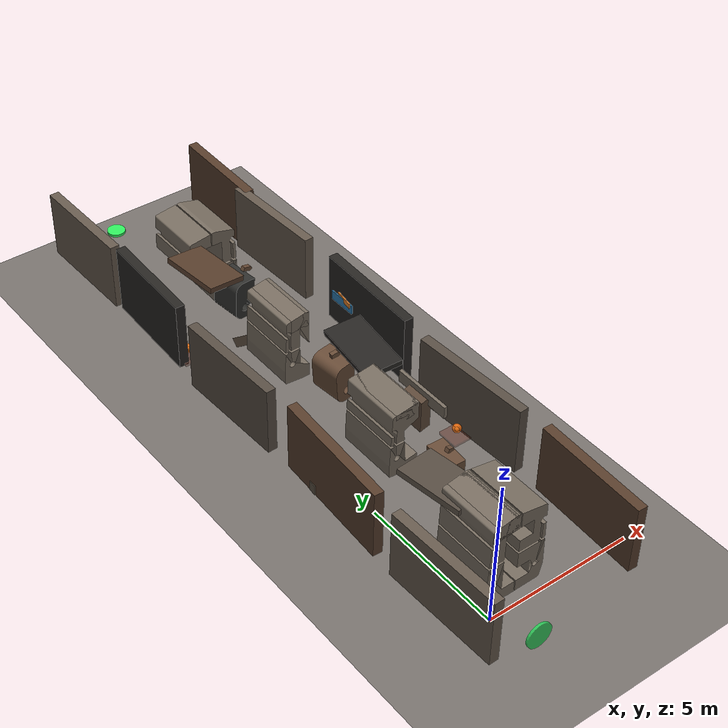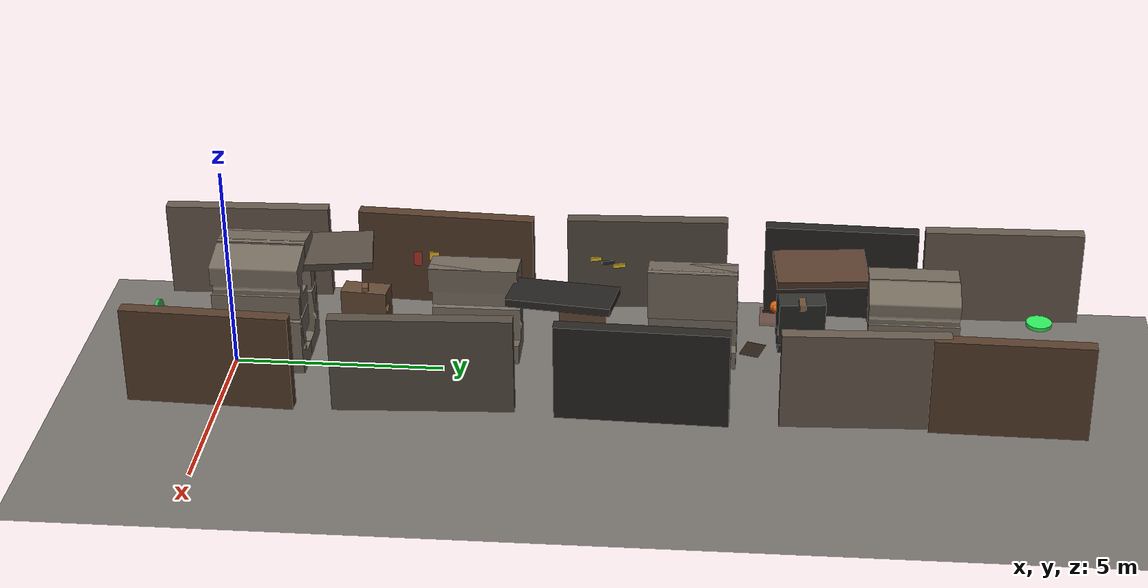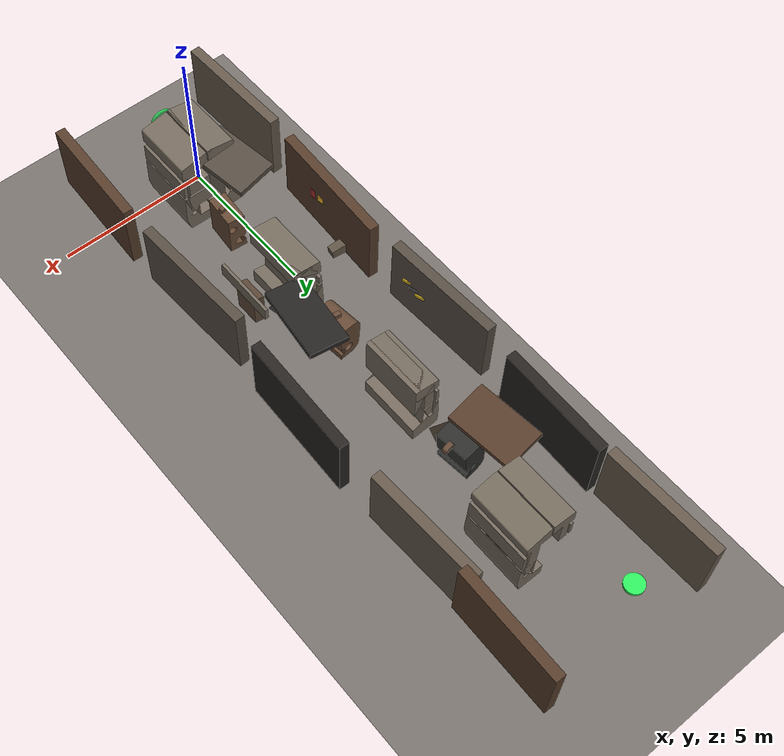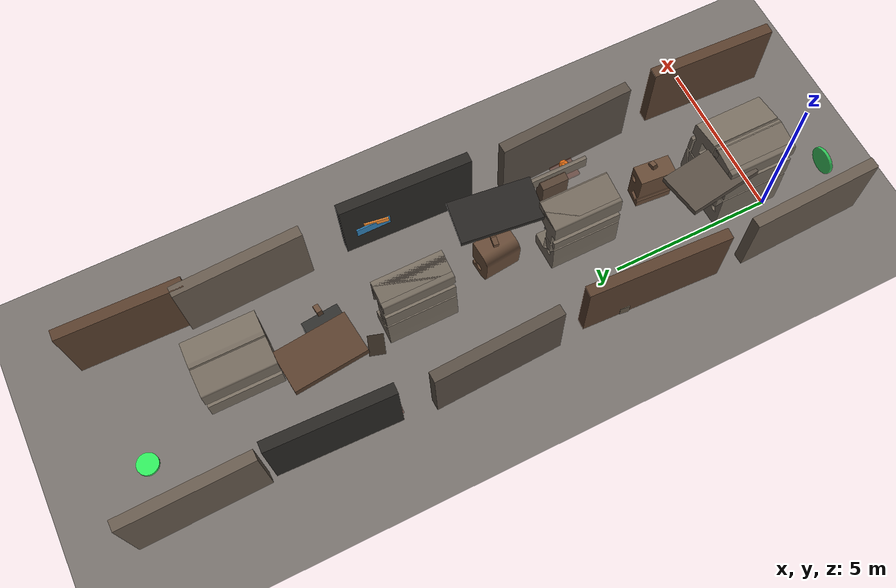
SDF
<sdf version="1.10">
 <world name="rescue_ruins_world">
  <gravity>0 0 -9.8</gravity>
  <physics name="1ms" type="ignored">
   <max_step_size>0.002</max_step_size>
   <real_time_factor>1.0</real_time_factor>
  </physics>
  <plugin filename="gz-sim-physics-system" name="gz::sim::systems::Physics"/>
  <plugin filename="gz-sim-user-commands-system" name="gz::sim::systems::UserCommands"/>
  <plugin filename="gz-sim-scene-broadcaster-system" name="gz::sim::systems::SceneBroadcaster"/>
  <plugin filename="gz-sim-sensors-system" name="gz::sim::systems::Sensors"/>
  <plugin filename="gz-sim-particle-emitter-system" name="gz::sim::systems::ParticleEmitter"/>
  <plugin filename="libsmooth_playback_system.so" name="rl_enhanced_gz_scene::SmoothPlaybackSystem">
   <enabled>false</enabled>
   <csv_path>/tmp/rl_enhanced_playback_samples.csv</csv_path>
   <payload_name>trajectory_payload</payload_name>
   <drone_front_name>world_drone_front</drone_front_name>
   <drone_rear_left_name>world_drone_rear_left</drone_rear_left_name>
   <drone_rear_right_name>world_drone_rear_right</drone_rear_right_name>
   <goal_marker_name>goal_cross_marker</goal_marker_name>
   <goal_marker_x>0.0</goal_marker_x>
   <goal_marker_y>19.0</goal_marker_y>
   <goal_marker_z>2.05</goal_marker_z>
   <goal_marker_yaw_rate>0.30</goal_marker_yaw_rate>
   <speed>1.0</speed>
   <z_offset>1.10</z_offset>
   <drone_z_rel>0.40</drone_z_rel>
   <drone_front_x>0.20</drone_front_x>
   <drone_front_y>0.00</drone_front_y>
   <drone_rear_left_x>-0.17</drone_rear_left_x>
   <drone_rear_left_y>0.13</drone_rear_left_y>
   <drone_rear_right_x>-0.17</drone_rear_right_x>
   <drone_rear_right_y>-0.13</drone_rear_right_y>
  </plugin>
  <scene><ambient>0.38 0.36 0.34 1</ambient><background>0.72 0.71 0.68 1</background></scene>
  <light name="sun" type="directional">
   <pose>0 0 30 0 0 0</pose>
   <diffuse>0.82 0.79 0.74 1</diffuse>
   <specular>0.22 0.22 0.22 1</specular>
   <direction>-0.35 0.18 -0.92</direction>
  </light>
  <model name="ground_plane">
   <static>true</static>
   <link name="ground_link">
    <collision name="collision">
     <geometry><plane><normal>0 0 1</normal><size>120 120</size></plane></geometry>
    </collision>
    <visual name="visual">
     <geometry><plane><normal>0 0 1</normal><size>120 120</size></plane></geometry>
     <material><ambient>0.46 0.44 0.42 1</ambient><diffuse>0.46 0.44 0.42 1</diffuse></material>
    </visual>
   </link>
  </model>
  <model name="left_wall_a">
   <static>true</static>
   <pose>-1.544520 0.200000 2.260000 0.000000 0.000000 0.030000</pose>
   <link name="link">
    <collision name="collision">
     <geometry><box><size>0.320000 3.900000 2.300000</size></box></geometry>
    </collision>
    <visual name="visual">
     <geometry><box><size>0.320000 3.900000 2.300000</size></box></geometry>
     <material>
      <ambient>0.21 0.19 0.16 1</ambient>
      <diffuse>0.40 0.35 0.30 1</diffuse>
      <specular>0.012 0.012 0.012 1</specular>
      <emissive>0 0 0 1</emissive>
     </material>
     <transparency>0.000</transparency>
    </visual>
   </link>
  </model>
  <model name="left_wall_b">
   <static>true</static>
   <pose>-1.454520 5.000000 2.260000 0.000000 0.000000 -0.050000</pose>
   <link name="link">
    <collision name="collision">
     <geometry><box><size>0.320000 4.200000 2.300000</size></box></geometry>
    </collision>
    <visual name="visual">
     <geometry><box><size>0.320000 4.200000 2.300000</size></box></geometry>
     <material>
      <ambient>0.20 0.14 0.10 1</ambient>
      <diffuse>0.34 0.24 0.17 1</diffuse>
      <specular>0.008 0.007 0.006 1</specular>
      <emissive>0 0 0 1</emissive>
     </material>
     <transparency>0.000</transparency>
    </visual>
   </link>
  </model>
  <model name="left_wall_c">
   <static>true</static>
   <pose>-1.564520 9.800000 2.260000 0.000000 0.000000 0.040000</pose>
   <link name="link">
    <collision name="collision">
     <geometry><box><size>0.320000 3.800000 2.300000</size></box></geometry>
    </collision>
    <visual name="visual">
     <geometry><box><size>0.320000 3.800000 2.300000</size></box></geometry>
     <material>
      <ambient>0.18 0.16 0.13 1</ambient>
      <diffuse>0.34 0.30 0.26 1</diffuse>
      <specular>0.010 0.010 0.010 1</specular>
      <emissive>0 0 0 1</emissive>
     </material>
     <transparency>0.000</transparency>
    </visual>
   </link>
  </model>
  <model name="left_wall_d">
   <static>true</static>
   <pose>-1.434520 14.400000 2.260000 0.000000 0.000000 -0.030000</pose>
   <link name="link">
    <collision name="collision">
     <geometry><box><size>0.320000 3.600000 2.300000</size></box></geometry>
    </collision>
    <visual name="visual">
     <geometry><box><size>0.320000 3.600000 2.300000</size></box></geometry>
     <material>
      <ambient>0.09 0.08 0.07 1</ambient>
      <diffuse>0.15 0.14 0.13 1</diffuse>
      <specular>0.004 0.004 0.004 1</specular>
      <emissive>0 0 0 1</emissive>
     </material>
     <transparency>0.000</transparency>
    </visual>
   </link>
  </model>
  <model name="left_wall_e">
   <static>true</static>
   <pose>-1.534520 18.200000 2.260000 0.000000 0.000000 0.020000</pose>
   <link name="link">
    <collision name="collision">
     <geometry><box><size>0.320000 3.700000 2.300000</size></box></geometry>
    </collision>
    <visual name="visual">
     <geometry><box><size>0.320000 3.700000 2.300000</size></box></geometry>
     <material>
      <ambient>0.21 0.19 0.16 1</ambient>
      <diffuse>0.40 0.35 0.30 1</diffuse>
      <specular>0.012 0.012 0.012 1</specular>
      <emissive>0 0 0 1</emissive>
     </material>
     <transparency>0.000</transparency>
    </visual>
   </link>
  </model>
  <model name="right_wall_a">
   <static>true</static>
   <pose>3.635480 0.300000 2.260000 0.000000 0.000000 -0.040000</pose>
   <link name="link">
    <collision name="collision">
     <geometry><box><size>0.320000 3.800000 2.300000</size></box></geometry>
    </collision>
    <visual name="visual">
     <geometry><box><size>0.320000 3.800000 2.300000</size></box></geometry>
     <material>
      <ambient>0.20 0.14 0.10 1</ambient>
      <diffuse>0.34 0.24 0.17 1</diffuse>
      <specular>0.008 0.007 0.006 1</specular>
      <emissive>0 0 0 1</emissive>
     </material>
     <transparency>0.000</transparency>
    </visual>
   </link>
  </model>
  <model name="right_wall_b">
   <static>true</static>
   <pose>3.545480 5.100000 2.260000 0.000000 0.000000 0.050000</pose>
   <link name="link">
    <collision name="collision">
     <geometry><box><size>0.320000 4.100000 2.300000</size></box></geometry>
    </collision>
    <visual name="visual">
     <geometry><box><size>0.320000 4.100000 2.300000</size></box></geometry>
     <material>
      <ambient>0.18 0.16 0.13 1</ambient>
      <diffuse>0.34 0.30 0.26 1</diffuse>
      <specular>0.010 0.010 0.010 1</specular>
      <emissive>0 0 0 1</emissive>
     </material>
     <transparency>0.000</transparency>
    </visual>
   </link>
  </model>
  <model name="right_wall_c">
   <static>true</static>
   <pose>3.655480 10.000000 2.260000 0.000000 0.000000 -0.030000</pose>
   <link name="link">
    <collision name="collision">
     <geometry><box><size>0.320000 3.900000 2.300000</size></box></geometry>
    </collision>
    <visual name="visual">
     <geometry><box><size>0.320000 3.900000 2.300000</size></box></geometry>
     <material>
      <ambient>0.09 0.08 0.07 1</ambient>
      <diffuse>0.15 0.14 0.13 1</diffuse>
      <specular>0.004 0.004 0.004 1</specular>
      <emissive>0 0 0 1</emissive>
     </material>
     <transparency>0.000</transparency>
    </visual>
   </link>
  </model>
  <model name="right_wall_d">
   <static>true</static>
   <pose>3.525480 14.900000 2.260000 0.000000 0.000000 0.040000</pose>
   <link name="link">
    <collision name="collision">
     <geometry><box><size>0.320000 3.700000 2.300000</size></box></geometry>
    </collision>
    <visual name="visual">
     <geometry><box><size>0.320000 3.700000 2.300000</size></box></geometry>
     <material>
      <ambient>0.21 0.19 0.16 1</ambient>
      <diffuse>0.40 0.35 0.30 1</diffuse>
      <specular>0.012 0.012 0.012 1</specular>
      <emissive>0 0 0 1</emissive>
     </material>
     <transparency>0.000</transparency>
    </visual>
   </link>
  </model>
  <model name="right_wall_e">
   <static>true</static>
   <pose>3.635480 18.100000 2.260000 0.000000 0.000000 -0.020000</pose>
   <link name="link">
    <collision name="collision">
     <geometry><box><size>0.320000 3.500000 2.300000</size></box></geometry>
    </collision>
    <visual name="visual">
     <geometry><box><size>0.320000 3.500000 2.300000</size></box></geometry>
     <material>
      <ambient>0.20 0.14 0.10 1</ambient>
      <diffuse>0.34 0.24 0.17 1</diffuse>
      <specular>0.008 0.007 0.006 1</specular>
      <emissive>0 0 0 1</emissive>
     </material>
     <transparency>0.000</transparency>
    </visual>
   </link>
  </model>
  <model name="ceiling_a">
   <static>true</static>
   <pose>0.225480 2.400000 3.200000 0.000000 0.100000 0.140000</pose>
   <link name="link">
    <collision name="collision">
     <geometry><box><size>1.350000 2.200000 0.180000</size></box></geometry>
    </collision>
    <visual name="visual">
     <geometry><box><size>1.350000 2.200000 0.180000</size></box></geometry>
     <material>
      <ambient>0.18 0.16 0.13 1</ambient>
      <diffuse>0.34 0.30 0.26 1</diffuse>
      <specular>0.010 0.010 0.010 1</specular>
      <emissive>0 0 0 1</emissive>
     </material>
     <transparency>0.000</transparency>
    </visual>
   </link>
  </model>
  <model name="ceiling_b">
   <static>true</static>
   <pose>1.905480 8.100000 3.160000 0.000000 -0.080000 -0.120000</pose>
   <link name="link">
    <collision name="collision">
     <geometry><box><size>1.240000 2.400000 0.180000</size></box></geometry>
    </collision>
    <visual name="visual">
     <geometry><box><size>1.240000 2.400000 0.180000</size></box></geometry>
     <material>
      <ambient>0.09 0.08 0.07 1</ambient>
      <diffuse>0.15 0.14 0.13 1</diffuse>
      <specular>0.004 0.004 0.004 1</specular>
      <emissive>0 0 0 1</emissive>
     </material>
     <transparency>0.000</transparency>
    </visual>
   </link>
  </model>
  <model name="ceiling_c">
   <static>true</static>
   <pose>0.265480 13.900000 3.220000 0.000000 0.120000 0.100000</pose>
   <link name="link">
    <collision name="collision">
     <geometry><box><size>1.300000 2.100000 0.180000</size></box></geometry>
    </collision>
    <visual name="visual">
     <geometry><box><size>1.300000 2.100000 0.180000</size></box></geometry>
     <material>
      <ambient>0.20 0.14 0.10 1</ambient>
      <diffuse>0.34 0.24 0.17 1</diffuse>
      <specular>0.008 0.007 0.006 1</specular>
      <emissive>0 0 0 1</emissive>
     </material>
     <transparency>0.000</transparency>
    </visual>
   </link>
  </model>
  <model name="mid_obs_0_core">
   <static>true</static>
   <pose>1.136000 3.500000 2.165000 0.000000 0.000000 0.000000</pose>
   <link name="link">
    <collision name="collision">
     <geometry>
      <mesh><uri>../meshes/mid_obs_0_core.stl</uri><scale>1.000000 1.000000 1.000000</scale></mesh>
     </geometry>
    </collision>
    <visual name="visual">
     <geometry>
      <mesh><uri>../meshes/mid_obs_0_core.stl</uri><scale>1.000000 1.000000 1.000000</scale></mesh>
     </geometry>
     <material>
      <ambient>0.20 0.20 0.19 1</ambient>
      <diffuse>0.20 0.20 0.19 1</diffuse>
      <specular>0.005 0.005 0.005 1</specular>
      <emissive>0 0 0 1</emissive>
     </material>
     <transparency>0.995</transparency>
    </visual>
   </link>
  </model>
  <model name="mid_obs_0_ruin_1">
   <static>true</static>
   <pose>1.136000 3.500000 2.165000 0.000000 -0.050000 -0.080000</pose>
   <link name="link">
    <visual name="visual">
     <geometry>
      <mesh><uri>../meshes/mid_obs_0_ruin_1.stl</uri><scale>1.000000 1.000000 1.000000</scale></mesh>
     </geometry>
     <material>
      <ambient>0.22 0.16 0.11 1</ambient>
      <diffuse>0.40 0.29 0.21 1</diffuse>
      <specular>0.011 0.009 0.007 1</specular>
      <emissive>0 0 0 1</emissive>
     </material>
     <transparency>0.000</transparency>
    </visual>
   </link>
  </model>
  <model name="mid_obs_0_crown_frag">
   <static>true</static>
   <pose>1.356000 3.500000 2.885000 0.000000 0.240000 0.110000</pose>
   <link name="link">
    <visual name="visual">
     <geometry><mesh><uri>../meshes/slab_b.stl</uri><scale>0.240000 0.528000 0.160000</scale></mesh></geometry>
     <material>
      <ambient>0.17 0.13 0.10 1</ambient>
      <diffuse>0.40 0.29 0.21 1</diffuse>
      <specular>0.011 0.009 0.007 1</specular>
      <emissive>0 0 0 1</emissive>
     </material>
     <transparency>0.000</transparency>
    </visual>
   </link>
  </model>
  <model name="mid_obs_1_core">
   <static>true</static>
   <pose>1.431000 8.500000 2.269167 0.000000 0.000000 0.000000</pose>
   <link name="link">
    <collision name="collision">
     <geometry>
      <mesh><uri>../meshes/mid_obs_1_core.stl</uri><scale>1.000000 1.000000 1.000000</scale></mesh>
     </geometry>
    </collision>
    <visual name="visual">
     <geometry>
      <mesh><uri>../meshes/mid_obs_1_core.stl</uri><scale>1.000000 1.000000 1.000000</scale></mesh>
     </geometry>
     <material>
      <ambient>0.20 0.20 0.19 1</ambient>
      <diffuse>0.20 0.20 0.19 1</diffuse>
      <specular>0.005 0.005 0.005 1</specular>
      <emissive>0 0 0 1</emissive>
     </material>
     <transparency>0.995</transparency>
    </visual>
   </link>
  </model>
  <model name="mid_obs_1_ruin_0">
   <static>true</static>
   <pose>1.431000 8.500000 2.269167 0.000000 -0.070000 0.100000</pose>
   <link name="link">
    <visual name="visual">
     <geometry>
      <mesh><uri>../meshes/mid_obs_1_ruin_0.stl</uri><scale>1.000000 1.000000 1.000000</scale></mesh>
     </geometry>
     <material>
      <ambient>0.22 0.16 0.11 1</ambient>
      <diffuse>0.40 0.29 0.21 1</diffuse>
      <specular>0.011 0.009 0.007 1</specular>
      <emissive>0 0 0 1</emissive>
     </material>
     <transparency>0.000</transparency>
    </visual>
   </link>
  </model>
  <model name="mid_obs_1_crown_frag">
   <static>true</static>
   <pose>1.191000 8.500000 2.989167 0.000000 -0.220000 -0.100000</pose>
   <link name="link">
    <visual name="visual">
     <geometry><mesh><uri>../meshes/slab_b.stl</uri><scale>0.290000 0.528000 0.160000</scale></mesh></geometry>
     <material>
      <ambient>0.17 0.13 0.10 1</ambient>
      <diffuse>0.40 0.29 0.21 1</diffuse>
      <specular>0.011 0.009 0.007 1</specular>
      <emissive>0 0 0 1</emissive>
     </material>
     <transparency>0.000</transparency>
    </visual>
   </link>
  </model>
  <model name="mid_obs_2_core">
   <static>true</static>
   <pose>1.285000 13.500000 2.229167 0.000000 0.000000 0.000000</pose>
   <link name="link">
    <collision name="collision">
     <geometry>
      <mesh><uri>../meshes/mid_obs_2_core.stl</uri><scale>1.000000 1.000000 1.000000</scale></mesh>
     </geometry>
    </collision>
    <visual name="visual">
     <geometry>
      <mesh><uri>../meshes/mid_obs_2_core.stl</uri><scale>1.000000 1.000000 1.000000</scale></mesh>
     </geometry>
     <material>
      <ambient>0.20 0.20 0.19 1</ambient>
      <diffuse>0.20 0.20 0.19 1</diffuse>
      <specular>0.005 0.005 0.005 1</specular>
      <emissive>0 0 0 1</emissive>
     </material>
     <transparency>0.995</transparency>
    </visual>
   </link>
  </model>
  <model name="mid_obs_2_ruin_0">
   <static>true</static>
   <pose>1.285000 13.500000 2.229167 0.000000 0.070000 0.100000</pose>
   <link name="link">
    <visual name="visual">
     <geometry>
      <mesh><uri>../meshes/mid_obs_2_ruin_0.stl</uri><scale>1.000000 1.000000 1.000000</scale></mesh>
     </geometry>
     <material>
      <ambient>0.10 0.10 0.10 1</ambient>
      <diffuse>0.18 0.18 0.17 1</diffuse>
      <specular>0.006 0.006 0.006 1</specular>
      <emissive>0 0 0 1</emissive>
     </material>
     <transparency>0.000</transparency>
    </visual>
   </link>
  </model>
  <model name="mid_obs_2_crown_frag">
   <static>true</static>
   <pose>1.505000 13.500000 2.949167 0.000000 0.240000 0.110000</pose>
   <link name="link">
    <visual name="visual">
     <geometry><mesh><uri>../meshes/slab_b.stl</uri><scale>0.340000 0.528000 0.160000</scale></mesh></geometry>
     <material>
      <ambient>0.17 0.13 0.10 1</ambient>
      <diffuse>0.40 0.29 0.21 1</diffuse>
      <specular>0.011 0.009 0.007 1</specular>
      <emissive>0 0 0 1</emissive>
     </material>
     <transparency>0.000</transparency>
    </visual>
   </link>
  </model>
  <model name="rubble_left_0">
   <static>true</static>
   <pose>-1.194520 5.800000 1.290000 0.000000 0.000000 -0.120000</pose>
   <link name="link">
    <visual name="visual">
     <geometry>
      <mesh><uri>../meshes/wall_chunk_a.stl</uri><scale>0.800000 0.620000 0.360000</scale></mesh>
     </geometry>
     <material>
      <ambient>0.20 0.18 0.15 1</ambient>
      <diffuse>0.37 0.33 0.27 1</diffuse>
      <specular>0.010 0.010 0.010 1</specular>
      <emissive>0 0 0 1</emissive>
     </material>
     <transparency>0.000</transparency>
    </visual>
   </link>
  </model>
  <model name="graffiti_l_base">
   <static>true</static>
   <pose>-1.344520 4.800000 2.250000 0.000000 0.000000 0.000000</pose>
   <link name="link">
    <visual name="visual">
     <geometry><box><size>0.040000 1.200000 0.360000</size></box></geometry>
     <material>
      <ambient>0.52 0.12 0.10 1</ambient>
      <diffuse>0.70 0.20 0.16 1</diffuse>
      <specular>0.002 0.002 0.002 1</specular>
      <emissive>0.03 0.01 0.01 1</emissive>
     </material>
     <transparency>0.000</transparency>
    </visual>
   </link>
  </model>
  <model name="graffiti_l_tag">
   <static>true</static>
   <pose>-1.343520 4.980000 2.350000 0.000000 0.000000 0.120000</pose>
   <link name="link">
    <visual name="visual">
     <geometry><box><size>0.040000 0.800000 0.200000</size></box></geometry>
     <material>
      <ambient>0.62 0.44 0.08 1</ambient>
      <diffuse>0.96 0.74 0.16 1</diffuse>
      <specular>0.002 0.002 0.002 1</specular>
      <emissive>0.06 0.04 0.01 1</emissive>
     </material>
     <transparency>0.000</transparency>
    </visual>
   </link>
  </model>
  <model name="graffiti_l_drip">
   <static>true</static>
   <pose>-1.342520 5.170000 2.080000 0.000000 0.000000 -0.100000</pose>
   <link name="link">
    <visual name="visual">
     <geometry><box><size>0.038000 0.300000 0.260000</size></box></geometry>
     <material>
      <ambient>0.08 0.08 0.08 1</ambient>
      <diffuse>0.18 0.18 0.18 1</diffuse>
      <specular>0.001 0.001 0.001 1</specular>
      <emissive>0 0 0 1</emissive>
     </material>
     <transparency>0.020</transparency>
    </visual>
   </link>
  </model>
  <model name="graffiti_r_stencil">
   <static>true</static>
   <pose>3.435480 11.100000 2.200000 0.000000 0.000000 0.000000</pose>
   <link name="link">
    <visual name="visual">
     <geometry><box><size>0.040000 1.000000 0.320000</size></box></geometry>
     <material>
      <ambient>0.10 0.30 0.42 1</ambient>
      <diffuse>0.18 0.50 0.72 1</diffuse>
      <specular>0.002 0.002 0.002 1</specular>
      <emissive>0.01 0.03 0.05 1</emissive>
     </material>
     <transparency>0.000</transparency>
    </visual>
   </link>
  </model>
  <model name="graffiti_r_tag">
   <static>true</static>
   <pose>3.434480 11.000000 2.340000 0.000000 0.000000 -0.150000</pose>
   <link name="link">
    <visual name="visual">
     <geometry><box><size>0.040000 0.700000 0.180000</size></box></geometry>
     <material>
      <ambient>0.58 0.28 0.08 1</ambient>
      <diffuse>0.94 0.54 0.18 1</diffuse>
      <specular>0.002 0.002 0.002 1</specular>
      <emissive>0.05 0.03 0.01 1</emissive>
     </material>
     <transparency>0.000</transparency>
    </visual>
   </link>
  </model>
  <model name="stripe_l_0">
   <static>true</static>
   <pose>-1.343520 8.600000 2.400000 0.000000 0.000000 0.300000</pose>
   <link name="link">
    <visual name="visual">
     <geometry><box><size>0.036000 0.300000 0.090000</size></box></geometry>
     <material>
      <ambient>0.54 0.43 0.08 1</ambient>
      <diffuse>0.94 0.78 0.14 1</diffuse>
      <specular>0.003 0.003 0.003 1</specular>
      <emissive>0 0 0 1</emissive>
     </material>
     <transparency>0.000</transparency>
    </visual>
   </link>
  </model>
  <model name="stripe_l_1">
   <static>true</static>
   <pose>-1.343520 8.870000 2.320000 0.000000 0.000000 0.300000</pose>
   <link name="link">
    <visual name="visual">
     <geometry><box><size>0.036000 0.300000 0.090000</size></box></geometry>
     <material>
      <ambient>0.07 0.07 0.07 1</ambient>
      <diffuse>0.16 0.16 0.16 1</diffuse>
      <specular>0.002 0.002 0.002 1</specular>
      <emissive>0 0 0 1</emissive>
     </material>
     <transparency>0.000</transparency>
    </visual>
   </link>
  </model>
  <model name="stripe_l_2">
   <static>true</static>
   <pose>-1.343520 9.140000 2.240000 0.000000 0.000000 0.300000</pose>
   <link name="link">
    <visual name="visual">
     <geometry><box><size>0.036000 0.300000 0.090000</size></box></geometry>
     <material>
      <ambient>0.54 0.43 0.08 1</ambient>
      <diffuse>0.94 0.78 0.14 1</diffuse>
      <specular>0.003 0.003 0.003 1</specular>
      <emissive>0 0 0 1</emissive>
     </material>
     <transparency>0.000</transparency>
    </visual>
   </link>
  </model>
  <model name="stain_floor_0">
   <static>true</static>
   <pose>1.385480 6.300000 1.195000 0.000000 0.000000 0.220000</pose>
   <link name="link">
    <visual name="visual">
     <geometry><box><size>0.740000 0.520000 0.010000</size></box></geometry>
     <material>
      <ambient>0.04 0.04 0.04 1</ambient>
      <diffuse>0.11 0.11 0.11 1</diffuse>
      <specular>0.001 0.001 0.001 1</specular>
      <emissive>0 0 0 1</emissive>
     </material>
     <transparency>0.150</transparency>
    </visual>
   </link>
  </model>
  <model name="stain_floor_1">
   <static>true</static>
   <pose>0.585480 12.400000 1.195000 0.000000 0.000000 -0.300000</pose>
   <link name="link">
    <visual name="visual">
     <geometry><box><size>0.600000 0.460000 0.010000</size></box></geometry>
     <material>
      <ambient>0.05 0.04 0.02 1</ambient>
      <diffuse>0.14 0.10 0.06 1</diffuse>
      <specular>0.001 0.001 0.001 1</specular>
      <emissive>0 0 0 1</emissive>
     </material>
     <transparency>0.200</transparency>
    </visual>
   </link>
  </model>
  <model name="fire_hazard_1">
   <static>true</static>
   <pose>3.165480 5.200000 1.140000 0.000000 0.000000 0.000000</pose>
   <link name="link">
    <collision name="collision">
     <geometry><box><size>0.720000 0.720000 0.080000</size></box></geometry>
    </collision>
    <visual name="visual">
     <geometry><box><size>0.720000 0.720000 0.080000</size></box></geometry>
     <material>
      <ambient>0.35 0.08 0.02 0.35</ambient>
      <diffuse>0.35 0.08 0.02 0.35</diffuse>
      <specular>0.08 0.08 0.08 1</specular>
      <emissive>0 0 0 1</emissive>
     </material>
     <transparency>0.000</transparency>
    </visual>
    <particle_emitter name="flame" type="ellipsoid">
     <pose>0 0 0.190000 0 0 0</pose>
     <emitting>true</emitting>
     <size>0.180000 0.180000 0.050000</size>
     <particle_size>0.110000 0.110000 0.110000</particle_size>
     <lifetime>1.200000</lifetime>
     <rate>120.000000</rate>
     <min_velocity>0.220000</min_velocity>
     <max_velocity>0.950000</max_velocity>
     <scale_rate>0.520000</scale_rate>
     <color_start>1.0 0.88 0.30 0.98</color_start>
     <color_end>1.0 0.22 0.04 0.70</color_end>
    </particle_emitter>
    <particle_emitter name="smoke" type="ellipsoid">
     <pose>0 0 0.330000 0 0 0</pose>
     <emitting>true</emitting>
     <size>0.070000 0.070000 0.030000</size>
     <particle_size>0.045000 0.045000 0.045000</particle_size>
     <lifetime>0.900000</lifetime>
     <rate>0.200000</rate>
     <min_velocity>0.050000</min_velocity>
     <max_velocity>0.140000</max_velocity>
     <scale_rate>0.040000</scale_rate>
     <color_start>0.20 0.20 0.20 0.06</color_start>
     <color_end>0.08 0.08 0.08 0.0</color_end>
    </particle_emitter>
    <visual name="flame_core_inner">
     <pose>0 0 0.220000 0 0 0</pose>
     <geometry><sphere><radius>0.070000</radius></sphere></geometry>
     <material>
      <ambient>1.0 0.68 0.18 1.0</ambient>
      <diffuse>1.0 0.68 0.18 1.0</diffuse>
      <emissive>1.0 0.68 0.18 1.0</emissive>
     </material>
     <transparency>0.05</transparency>
    </visual>
    <visual name="flame_core_glow">
     <pose>0 0 0.260000 0 0 0</pose>
     <geometry><sphere><radius>0.140000</radius></sphere></geometry>
     <material>
      <ambient>1.0 0.48 0.10 0.95</ambient>
      <diffuse>1.0 0.48 0.10 0.95</diffuse>
      <emissive>1.0 0.48 0.10 0.95</emissive>
     </material>
     <transparency>0.12</transparency>
    </visual>
   </link>
  </model>
  <model name="fire_hazard_2">
   <static>true</static>
   <pose>-1.094520 12.900000 1.140000 0.000000 0.000000 0.000000</pose>
   <link name="link">
    <collision name="collision">
     <geometry><box><size>0.760000 0.760000 0.080000</size></box></geometry>
    </collision>
    <visual name="visual">
     <geometry><box><size>0.760000 0.760000 0.080000</size></box></geometry>
     <material>
      <ambient>0.35 0.08 0.02 0.35</ambient>
      <diffuse>0.35 0.08 0.02 0.35</diffuse>
      <specular>0.08 0.08 0.08 1</specular>
      <emissive>0 0 0 1</emissive>
     </material>
     <transparency>0.000</transparency>
    </visual>
    <particle_emitter name="flame" type="ellipsoid">
     <pose>0 0 0.200000 0 0 0</pose>
     <emitting>true</emitting>
     <size>0.190000 0.190000 0.050000</size>
     <particle_size>0.115000 0.115000 0.115000</particle_size>
     <lifetime>1.250000</lifetime>
     <rate>128.000000</rate>
     <min_velocity>0.220000</min_velocity>
     <max_velocity>1.000000</max_velocity>
     <scale_rate>0.540000</scale_rate>
     <color_start>1.0 0.88 0.30 0.98</color_start>
     <color_end>1.0 0.22 0.04 0.70</color_end>
    </particle_emitter>
    <particle_emitter name="smoke" type="ellipsoid">
     <pose>0 0 0.350000 0 0 0</pose>
     <emitting>true</emitting>
     <size>0.075000 0.075000 0.030000</size>
     <particle_size>0.048000 0.048000 0.048000</particle_size>
     <lifetime>0.950000</lifetime>
     <rate>0.200000</rate>
     <min_velocity>0.050000</min_velocity>
     <max_velocity>0.150000</max_velocity>
     <scale_rate>0.040000</scale_rate>
     <color_start>0.20 0.20 0.20 0.06</color_start>
     <color_end>0.08 0.08 0.08 0.0</color_end>
    </particle_emitter>
    <visual name="flame_core_inner">
     <pose>0 0 0.230000 0 0 0</pose>
     <geometry><sphere><radius>0.075000</radius></sphere></geometry>
     <material>
      <ambient>1.0 0.68 0.18 1.0</ambient>
      <diffuse>1.0 0.68 0.18 1.0</diffuse>
      <emissive>1.0 0.68 0.18 1.0</emissive>
     </material>
     <transparency>0.05</transparency>
    </visual>
    <visual name="flame_core_glow">
     <pose>0 0 0.270000 0 0 0</pose>
     <geometry><sphere><radius>0.145000</radius></sphere></geometry>
     <material>
      <ambient>1.0 0.48 0.10 0.95</ambient>
      <diffuse>1.0 0.48 0.10 0.95</diffuse>
      <emissive>1.0 0.48 0.10 0.95</emissive>
     </material>
     <transparency>0.12</transparency>
    </visual>
   </link>
  </model>
  <model name="door1_core_left_0">
   <static>true</static>
   <pose>0.780000 1.000000 2.100000 0.000000 0.000000 0.000000</pose>
   <link name="link">
    <collision name="collision">
     <geometry>
      <mesh><uri>../meshes/door1_core_left_0.stl</uri><scale>1.000000 1.000000 1.000000</scale></mesh>
     </geometry>
    </collision>
    <visual name="visual">
     <geometry>
      <mesh><uri>../meshes/door1_core_left_0.stl</uri><scale>1.000000 1.000000 1.000000</scale></mesh>
     </geometry>
     <material>
      <ambient>0.24 0.22 0.20 1</ambient>
      <diffuse>0.46 0.42 0.37 1</diffuse>
      <specular>0.012 0.012 0.012 1</specular>
      <emissive>0 0 0 1</emissive>
     </material>
     <transparency>0.000</transparency>
    </visual>
   </link>
  </model>
  <model name="door1_core_left_1">
   <static>true</static>
   <pose>0.780000 1.000000 2.100000 0.000000 0.000000 0.000000</pose>
   <link name="link">
    <collision name="collision">
     <geometry>
      <mesh><uri>../meshes/door1_core_left_1.stl</uri><scale>1.000000 1.000000 1.000000</scale></mesh>
     </geometry>
    </collision>
    <visual name="visual">
     <geometry>
      <mesh><uri>../meshes/door1_core_left_1.stl</uri><scale>1.000000 1.000000 1.000000</scale></mesh>
     </geometry>
     <material>
      <ambient>0.24 0.22 0.20 1</ambient>
      <diffuse>0.46 0.42 0.37 1</diffuse>
      <specular>0.012 0.012 0.012 1</specular>
      <emissive>0 0 0 1</emissive>
     </material>
     <transparency>0.000</transparency>
    </visual>
   </link>
  </model>
  <model name="door1_core_left_2">
   <static>true</static>
   <pose>0.780000 1.000000 2.100000 0.000000 0.000000 0.000000</pose>
   <link name="link">
    <collision name="collision">
     <geometry>
      <mesh><uri>../meshes/door1_core_left_2.stl</uri><scale>1.000000 1.000000 1.000000</scale></mesh>
     </geometry>
    </collision>
    <visual name="visual">
     <geometry>
      <mesh><uri>../meshes/door1_core_left_2.stl</uri><scale>1.000000 1.000000 1.000000</scale></mesh>
     </geometry>
     <material>
      <ambient>0.24 0.22 0.20 1</ambient>
      <diffuse>0.46 0.42 0.37 1</diffuse>
      <specular>0.012 0.012 0.012 1</specular>
      <emissive>0 0 0 1</emissive>
     </material>
     <transparency>0.000</transparency>
    </visual>
   </link>
  </model>
  <model name="door1_core_right_0">
   <static>true</static>
   <pose>0.780000 1.000000 2.100000 0.000000 0.000000 0.000000</pose>
   <link name="link">
    <collision name="collision">
     <geometry>
      <mesh><uri>../meshes/door1_core_right_0.stl</uri><scale>1.000000 1.000000 1.000000</scale></mesh>
     </geometry>
    </collision>
    <visual name="visual">
     <geometry>
      <mesh><uri>../meshes/door1_core_right_0.stl</uri><scale>1.000000 1.000000 1.000000</scale></mesh>
     </geometry>
     <material>
      <ambient>0.24 0.22 0.20 1</ambient>
      <diffuse>0.46 0.42 0.37 1</diffuse>
      <specular>0.012 0.012 0.012 1</specular>
      <emissive>0 0 0 1</emissive>
     </material>
     <transparency>0.000</transparency>
    </visual>
   </link>
  </model>
  <model name="door1_core_right_1">
   <static>true</static>
   <pose>0.780000 1.000000 2.100000 0.000000 0.000000 0.000000</pose>
   <link name="link">
    <collision name="collision">
     <geometry>
      <mesh><uri>../meshes/door1_core_right_1.stl</uri><scale>1.000000 1.000000 1.000000</scale></mesh>
     </geometry>
    </collision>
    <visual name="visual">
     <geometry>
      <mesh><uri>../meshes/door1_core_right_1.stl</uri><scale>1.000000 1.000000 1.000000</scale></mesh>
     </geometry>
     <material>
      <ambient>0.24 0.22 0.20 1</ambient>
      <diffuse>0.46 0.42 0.37 1</diffuse>
      <specular>0.012 0.012 0.012 1</specular>
      <emissive>0 0 0 1</emissive>
     </material>
     <transparency>0.000</transparency>
    </visual>
   </link>
  </model>
  <model name="door1_core_right_2">
   <static>true</static>
   <pose>0.780000 1.000000 2.100000 0.000000 0.000000 0.000000</pose>
   <link name="link">
    <collision name="collision">
     <geometry>
      <mesh><uri>../meshes/door1_core_right_2.stl</uri><scale>1.000000 1.000000 1.000000</scale></mesh>
     </geometry>
    </collision>
    <visual name="visual">
     <geometry>
      <mesh><uri>../meshes/door1_core_right_2.stl</uri><scale>1.000000 1.000000 1.000000</scale></mesh>
     </geometry>
     <material>
      <ambient>0.24 0.22 0.20 1</ambient>
      <diffuse>0.46 0.42 0.37 1</diffuse>
      <specular>0.012 0.012 0.012 1</specular>
      <emissive>0 0 0 1</emissive>
     </material>
     <transparency>0.000</transparency>
    </visual>
   </link>
  </model>
  <model name="door1_core_top_0">
   <static>true</static>
   <pose>0.780000 1.000000 2.100000 0.000000 0.000000 0.000000</pose>
   <link name="link">
    <collision name="collision">
     <geometry>
      <mesh><uri>../meshes/door1_core_top_0.stl</uri><scale>1.000000 1.000000 1.000000</scale></mesh>
     </geometry>
    </collision>
    <visual name="visual">
     <geometry>
      <mesh><uri>../meshes/door1_core_top_0.stl</uri><scale>1.000000 1.000000 1.000000</scale></mesh>
     </geometry>
     <material>
      <ambient>0.24 0.22 0.20 1</ambient>
      <diffuse>0.46 0.42 0.37 1</diffuse>
      <specular>0.012 0.012 0.012 1</specular>
      <emissive>0 0 0 1</emissive>
     </material>
     <transparency>0.000</transparency>
    </visual>
   </link>
  </model>
  <model name="door1_broken_top">
   <static>true</static>
   <pose>0.480000 0.880000 3.320000 0.000000 0.000000 0.180000</pose>
   <link name="link">
    <visual name="visual">
     <geometry><mesh><uri>../meshes/slab_b.stl</uri><scale>0.400000 1.264800 0.220000</scale></mesh></geometry>
     <material>
      <ambient>0.14 0.14 0.13 1</ambient>
      <diffuse>0.28 0.27 0.25 1</diffuse>
      <specular>0.008 0.008 0.008 1</specular>
      <emissive>0 0 0 1</emissive>
     </material>
     <transparency>0.000</transparency>
    </visual>
   </link>
  </model>
  <model name="door2_core_left_0">
   <static>true</static>
   <pose>1.492000 6.000000 2.230000 0.000000 0.000000 0.000000</pose>
   <link name="link">
    <collision name="collision">
     <geometry>
      <mesh><uri>../meshes/door2_core_left_0.stl</uri><scale>1.000000 1.000000 1.000000</scale></mesh>
     </geometry>
    </collision>
    <visual name="visual">
     <geometry>
      <mesh><uri>../meshes/door2_core_left_0.stl</uri><scale>1.000000 1.000000 1.000000</scale></mesh>
     </geometry>
     <material>
      <ambient>0.24 0.22 0.20 1</ambient>
      <diffuse>0.46 0.42 0.37 1</diffuse>
      <specular>0.012 0.012 0.012 1</specular>
      <emissive>0 0 0 1</emissive>
     </material>
     <transparency>0.000</transparency>
    </visual>
   </link>
  </model>
  <model name="door2_core_left_1">
   <static>true</static>
   <pose>1.492000 6.000000 2.230000 0.000000 0.000000 0.000000</pose>
   <link name="link">
    <collision name="collision">
     <geometry>
      <mesh><uri>../meshes/door2_core_left_1.stl</uri><scale>1.000000 1.000000 1.000000</scale></mesh>
     </geometry>
    </collision>
    <visual name="visual">
     <geometry>
      <mesh><uri>../meshes/door2_core_left_1.stl</uri><scale>1.000000 1.000000 1.000000</scale></mesh>
     </geometry>
     <material>
      <ambient>0.24 0.22 0.20 1</ambient>
      <diffuse>0.46 0.42 0.37 1</diffuse>
      <specular>0.012 0.012 0.012 1</specular>
      <emissive>0 0 0 1</emissive>
     </material>
     <transparency>0.000</transparency>
    </visual>
   </link>
  </model>
  <model name="door2_core_left_2">
   <static>true</static>
   <pose>1.492000 6.000000 2.230000 0.000000 0.000000 0.000000</pose>
   <link name="link">
    <collision name="collision">
     <geometry>
      <mesh><uri>../meshes/door2_core_left_2.stl</uri><scale>1.000000 1.000000 1.000000</scale></mesh>
     </geometry>
    </collision>
    <visual name="visual">
     <geometry>
      <mesh><uri>../meshes/door2_core_left_2.stl</uri><scale>1.000000 1.000000 1.000000</scale></mesh>
     </geometry>
     <material>
      <ambient>0.24 0.22 0.20 1</ambient>
      <diffuse>0.46 0.42 0.37 1</diffuse>
      <specular>0.012 0.012 0.012 1</specular>
      <emissive>0 0 0 1</emissive>
     </material>
     <transparency>0.000</transparency>
    </visual>
   </link>
  </model>
  <model name="door2_core_right_1">
   <static>true</static>
   <pose>1.492000 6.000000 2.230000 0.000000 0.000000 0.000000</pose>
   <link name="link">
    <collision name="collision">
     <geometry>
      <mesh><uri>../meshes/door2_core_right_1.stl</uri><scale>1.000000 1.000000 1.000000</scale></mesh>
     </geometry>
    </collision>
    <visual name="visual">
     <geometry>
      <mesh><uri>../meshes/door2_core_right_1.stl</uri><scale>1.000000 1.000000 1.000000</scale></mesh>
     </geometry>
     <material>
      <ambient>0.24 0.22 0.20 1</ambient>
      <diffuse>0.46 0.42 0.37 1</diffuse>
      <specular>0.012 0.012 0.012 1</specular>
      <emissive>0 0 0 1</emissive>
     </material>
     <transparency>0.000</transparency>
    </visual>
   </link>
  </model>
  <model name="door2_core_top_0">
   <static>true</static>
   <pose>1.492000 6.000000 2.230000 0.000000 0.000000 0.000000</pose>
   <link name="link">
    <collision name="collision">
     <geometry>
      <mesh><uri>../meshes/door2_core_top_0.stl</uri><scale>1.000000 1.000000 1.000000</scale></mesh>
     </geometry>
    </collision>
    <visual name="visual">
     <geometry>
      <mesh><uri>../meshes/door2_core_top_0.stl</uri><scale>1.000000 1.000000 1.000000</scale></mesh>
     </geometry>
     <material>
      <ambient>0.24 0.22 0.20 1</ambient>
      <diffuse>0.46 0.42 0.37 1</diffuse>
      <specular>0.012 0.012 0.012 1</specular>
      <emissive>0 0 0 1</emissive>
     </material>
     <transparency>0.000</transparency>
    </visual>
   </link>
  </model>
  <model name="door2_broken_side">
   <static>true</static>
   <pose>2.352000 6.080000 2.004400 0.000000 0.000000 0.000000</pose>
   <link name="link">
    <visual name="visual">
     <geometry>
      <mesh><uri>../meshes/wall_chunk_a.stl</uri><scale>0.360000 1.734000 1.140000</scale></mesh>
     </geometry>
     <material>
      <ambient>0.20 0.16 0.12 1</ambient>
      <diffuse>0.36 0.28 0.22 1</diffuse>
      <specular>0.010 0.008 0.006 1</specular>
      <emissive>0 0 0 1</emissive>
     </material>
     <transparency>0.000</transparency>
    </visual>
   </link>
  </model>
  <model name="door3_core_left_0">
   <static>true</static>
   <pose>1.370000 11.000000 2.308333 0.000000 0.000000 0.000000</pose>
   <link name="link">
    <collision name="collision">
     <geometry>
      <mesh><uri>../meshes/door3_core_left_0.stl</uri><scale>1.000000 1.000000 1.000000</scale></mesh>
     </geometry>
    </collision>
    <visual name="visual">
     <geometry>
      <mesh><uri>../meshes/door3_core_left_0.stl</uri><scale>1.000000 1.000000 1.000000</scale></mesh>
     </geometry>
     <material>
      <ambient>0.24 0.22 0.20 1</ambient>
      <diffuse>0.46 0.42 0.37 1</diffuse>
      <specular>0.012 0.012 0.012 1</specular>
      <emissive>0 0 0 1</emissive>
     </material>
     <transparency>0.000</transparency>
    </visual>
   </link>
  </model>
  <model name="door3_core_left_1">
   <static>true</static>
   <pose>1.370000 11.000000 2.308333 0.000000 0.000000 0.000000</pose>
   <link name="link">
    <collision name="collision">
     <geometry>
      <mesh><uri>../meshes/door3_core_left_1.stl</uri><scale>1.000000 1.000000 1.000000</scale></mesh>
     </geometry>
    </collision>
    <visual name="visual">
     <geometry>
      <mesh><uri>../meshes/door3_core_left_1.stl</uri><scale>1.000000 1.000000 1.000000</scale></mesh>
     </geometry>
     <material>
      <ambient>0.24 0.22 0.20 1</ambient>
      <diffuse>0.46 0.42 0.37 1</diffuse>
      <specular>0.012 0.012 0.012 1</specular>
      <emissive>0 0 0 1</emissive>
     </material>
     <transparency>0.000</transparency>
    </visual>
   </link>
  </model>
  <model name="door3_core_left_2">
   <static>true</static>
   <pose>1.370000 11.000000 2.308333 0.000000 0.000000 0.000000</pose>
   <link name="link">
    <collision name="collision">
     <geometry>
      <mesh><uri>../meshes/door3_core_left_2.stl</uri><scale>1.000000 1.000000 1.000000</scale></mesh>
     </geometry>
    </collision>
    <visual name="visual">
     <geometry>
      <mesh><uri>../meshes/door3_core_left_2.stl</uri><scale>1.000000 1.000000 1.000000</scale></mesh>
     </geometry>
     <material>
      <ambient>0.24 0.22 0.20 1</ambient>
      <diffuse>0.46 0.42 0.37 1</diffuse>
      <specular>0.012 0.012 0.012 1</specular>
      <emissive>0 0 0 1</emissive>
     </material>
     <transparency>0.000</transparency>
    </visual>
   </link>
  </model>
  <model name="door3_core_top_0">
   <static>true</static>
   <pose>1.370000 11.000000 2.308333 0.000000 0.000000 0.000000</pose>
   <link name="link">
    <collision name="collision">
     <geometry>
      <mesh><uri>../meshes/door3_core_top_0.stl</uri><scale>1.000000 1.000000 1.000000</scale></mesh>
     </geometry>
    </collision>
    <visual name="visual">
     <geometry>
      <mesh><uri>../meshes/door3_core_top_0.stl</uri><scale>1.000000 1.000000 1.000000</scale></mesh>
     </geometry>
     <material>
      <ambient>0.24 0.22 0.20 1</ambient>
      <diffuse>0.46 0.42 0.37 1</diffuse>
      <specular>0.012 0.012 0.012 1</specular>
      <emissive>0 0 0 1</emissive>
     </material>
     <transparency>0.000</transparency>
    </visual>
   </link>
  </model>
  <model name="door3_broken_top">
   <static>true</static>
   <pose>1.070000 10.880000 3.283333 0.000000 0.000000 0.180000</pose>
   <link name="link">
    <visual name="visual">
     <geometry><mesh><uri>../meshes/slab_b.stl</uri><scale>0.400000 1.264800 0.220000</scale></mesh></geometry>
     <material>
      <ambient>0.14 0.14 0.13 1</ambient>
      <diffuse>0.28 0.27 0.25 1</diffuse>
      <specular>0.008 0.008 0.008 1</specular>
      <emissive>0 0 0 1</emissive>
     </material>
     <transparency>0.000</transparency>
    </visual>
   </link>
  </model>
  <model name="door4_core_left_1">
   <static>true</static>
   <pose>1.200000 16.000000 2.150000 0.000000 0.000000 0.000000</pose>
   <link name="link">
    <collision name="collision">
     <geometry>
      <mesh><uri>../meshes/door4_core_left_1.stl</uri><scale>1.000000 1.000000 1.000000</scale></mesh>
     </geometry>
    </collision>
    <visual name="visual">
     <geometry>
      <mesh><uri>../meshes/door4_core_left_1.stl</uri><scale>1.000000 1.000000 1.000000</scale></mesh>
     </geometry>
     <material>
      <ambient>0.24 0.22 0.20 1</ambient>
      <diffuse>0.46 0.42 0.37 1</diffuse>
      <specular>0.012 0.012 0.012 1</specular>
      <emissive>0 0 0 1</emissive>
     </material>
     <transparency>0.000</transparency>
    </visual>
   </link>
  </model>
  <model name="door4_core_left_2">
   <static>true</static>
   <pose>1.200000 16.000000 2.150000 0.000000 0.000000 0.000000</pose>
   <link name="link">
    <collision name="collision">
     <geometry>
      <mesh><uri>../meshes/door4_core_left_2.stl</uri><scale>1.000000 1.000000 1.000000</scale></mesh>
     </geometry>
    </collision>
    <visual name="visual">
     <geometry>
      <mesh><uri>../meshes/door4_core_left_2.stl</uri><scale>1.000000 1.000000 1.000000</scale></mesh>
     </geometry>
     <material>
      <ambient>0.24 0.22 0.20 1</ambient>
      <diffuse>0.46 0.42 0.37 1</diffuse>
      <specular>0.012 0.012 0.012 1</specular>
      <emissive>0 0 0 1</emissive>
     </material>
     <transparency>0.000</transparency>
    </visual>
   </link>
  </model>
  <model name="door4_core_right_0">
   <static>true</static>
   <pose>1.200000 16.000000 2.150000 0.000000 0.000000 0.000000</pose>
   <link name="link">
    <collision name="collision">
     <geometry>
      <mesh><uri>../meshes/door4_core_right_0.stl</uri><scale>1.000000 1.000000 1.000000</scale></mesh>
     </geometry>
    </collision>
    <visual name="visual">
     <geometry>
      <mesh><uri>../meshes/door4_core_right_0.stl</uri><scale>1.000000 1.000000 1.000000</scale></mesh>
     </geometry>
     <material>
      <ambient>0.24 0.22 0.20 1</ambient>
      <diffuse>0.46 0.42 0.37 1</diffuse>
      <specular>0.012 0.012 0.012 1</specular>
      <emissive>0 0 0 1</emissive>
     </material>
     <transparency>0.000</transparency>
    </visual>
   </link>
  </model>
  <model name="door4_core_right_1">
   <static>true</static>
   <pose>1.200000 16.000000 2.150000 0.000000 0.000000 0.000000</pose>
   <link name="link">
    <collision name="collision">
     <geometry>
      <mesh><uri>../meshes/door4_core_right_1.stl</uri><scale>1.000000 1.000000 1.000000</scale></mesh>
     </geometry>
    </collision>
    <visual name="visual">
     <geometry>
      <mesh><uri>../meshes/door4_core_right_1.stl</uri><scale>1.000000 1.000000 1.000000</scale></mesh>
     </geometry>
     <material>
      <ambient>0.24 0.22 0.20 1</ambient>
      <diffuse>0.46 0.42 0.37 1</diffuse>
      <specular>0.012 0.012 0.012 1</specular>
      <emissive>0 0 0 1</emissive>
     </material>
     <transparency>0.000</transparency>
    </visual>
   </link>
  </model>
  <model name="door4_core_right_2">
   <static>true</static>
   <pose>1.200000 16.000000 2.150000 0.000000 0.000000 0.000000</pose>
   <link name="link">
    <collision name="collision">
     <geometry>
      <mesh><uri>../meshes/door4_core_right_2.stl</uri><scale>1.000000 1.000000 1.000000</scale></mesh>
     </geometry>
    </collision>
    <visual name="visual">
     <geometry>
      <mesh><uri>../meshes/door4_core_right_2.stl</uri><scale>1.000000 1.000000 1.000000</scale></mesh>
     </geometry>
     <material>
      <ambient>0.24 0.22 0.20 1</ambient>
      <diffuse>0.46 0.42 0.37 1</diffuse>
      <specular>0.012 0.012 0.012 1</specular>
      <emissive>0 0 0 1</emissive>
     </material>
     <transparency>0.000</transparency>
    </visual>
   </link>
  </model>
  <model name="door4_broken_side">
   <static>true</static>
   <pose>1.915000 16.080000 1.879280 0.000000 0.000000 0.000000</pose>
   <link name="link">
    <visual name="visual">
     <geometry>
      <mesh><uri>../meshes/wall_chunk_a.stl</uri><scale>0.360000 1.734000 1.368000</scale></mesh>
     </geometry>
     <material>
      <ambient>0.20 0.16 0.12 1</ambient>
      <diffuse>0.36 0.28 0.22 1</diffuse>
      <specular>0.010 0.008 0.006 1</specular>
      <emissive>0 0 0 1</emissive>
     </material>
     <transparency>0.000</transparency>
    </visual>
   </link>
  </model>
  <light name="door1_inner_light_0" type="point">
   <pose>0.780000 0.440000 1.936800 0 0 0</pose>
   <diffuse>0.96 0.72 0.22 1</diffuse>
   <specular>0.12 0.09 0.04 1</specular>
   <attenuation>
    <range>2.800</range>
    <constant>0.240</constant>
    <linear>0.260</linear>
    <quadratic>0.080</quadratic>
   </attenuation>
  </light>
  <light name="door1_inner_light_1" type="point">
   <pose>0.780000 1.000000 1.936800 0 0 0</pose>
   <diffuse>0.96 0.72 0.22 1</diffuse>
   <specular>0.12 0.09 0.04 1</specular>
   <attenuation>
    <range>2.800</range>
    <constant>0.240</constant>
    <linear>0.260</linear>
    <quadratic>0.080</quadratic>
   </attenuation>
  </light>
  <light name="door1_inner_light_2" type="point">
   <pose>0.780000 1.560000 1.936800 0 0 0</pose>
   <diffuse>0.96 0.72 0.22 1</diffuse>
   <specular>0.12 0.09 0.04 1</specular>
   <attenuation>
    <range>2.800</range>
    <constant>0.240</constant>
    <linear>0.260</linear>
    <quadratic>0.080</quadratic>
   </attenuation>
  </light>
  <light name="door1_inner_floor_fill" type="point">
   <pose>0.780000 1.000000 1.200000 0 0 0</pose>
   <diffuse>0.90 0.68 0.20 1</diffuse>
   <specular>0.10 0.08 0.03 1</specular>
   <attenuation>
    <range>2.200</range>
    <constant>0.300</constant>
    <linear>0.320</linear>
    <quadratic>0.110</quadratic>
   </attenuation>
  </light>
  <light name="door2_inner_light_0" type="point">
   <pose>1.492000 5.440000 2.110000 0 0 0</pose>
   <diffuse>0.96 0.72 0.22 1</diffuse>
   <specular>0.12 0.09 0.04 1</specular>
   <attenuation>
    <range>2.800</range>
    <constant>0.240</constant>
    <linear>0.260</linear>
    <quadratic>0.080</quadratic>
   </attenuation>
  </light>
  <light name="door2_inner_light_1" type="point">
   <pose>1.492000 6.000000 2.110000 0 0 0</pose>
   <diffuse>0.96 0.72 0.22 1</diffuse>
   <specular>0.12 0.09 0.04 1</specular>
   <attenuation>
    <range>2.800</range>
    <constant>0.240</constant>
    <linear>0.260</linear>
    <quadratic>0.080</quadratic>
   </attenuation>
  </light>
  <light name="door2_inner_light_2" type="point">
   <pose>1.492000 6.560000 2.110000 0 0 0</pose>
   <diffuse>0.96 0.72 0.22 1</diffuse>
   <specular>0.12 0.09 0.04 1</specular>
   <attenuation>
    <range>2.800</range>
    <constant>0.240</constant>
    <linear>0.260</linear>
    <quadratic>0.080</quadratic>
   </attenuation>
  </light>
  <light name="door2_inner_floor_fill" type="point">
   <pose>1.492000 6.000000 1.600000 0 0 0</pose>
   <diffuse>0.90 0.68 0.20 1</diffuse>
   <specular>0.10 0.08 0.03 1</specular>
   <attenuation>
    <range>2.200</range>
    <constant>0.300</constant>
    <linear>0.320</linear>
    <quadratic>0.110</quadratic>
   </attenuation>
  </light>
  <light name="door3_inner_light_0" type="point">
   <pose>1.370000 10.440000 2.184333 0 0 0</pose>
   <diffuse>0.96 0.72 0.22 1</diffuse>
   <specular>0.12 0.09 0.04 1</specular>
   <attenuation>
    <range>2.800</range>
    <constant>0.240</constant>
    <linear>0.260</linear>
    <quadratic>0.080</quadratic>
   </attenuation>
  </light>
  <light name="door3_inner_light_1" type="point">
   <pose>1.370000 11.000000 2.184333 0 0 0</pose>
   <diffuse>0.96 0.72 0.22 1</diffuse>
   <specular>0.12 0.09 0.04 1</specular>
   <attenuation>
    <range>2.800</range>
    <constant>0.240</constant>
    <linear>0.260</linear>
    <quadratic>0.080</quadratic>
   </attenuation>
  </light>
  <light name="door3_inner_light_2" type="point">
   <pose>1.370000 11.560000 2.184333 0 0 0</pose>
   <diffuse>0.96 0.72 0.22 1</diffuse>
   <specular>0.12 0.09 0.04 1</specular>
   <attenuation>
    <range>2.800</range>
    <constant>0.240</constant>
    <linear>0.260</linear>
    <quadratic>0.080</quadratic>
   </attenuation>
  </light>
  <light name="door3_inner_floor_fill" type="point">
   <pose>1.370000 11.000000 1.653333 0 0 0</pose>
   <diffuse>0.90 0.68 0.20 1</diffuse>
   <specular>0.10 0.08 0.03 1</specular>
   <attenuation>
    <range>2.200</range>
    <constant>0.300</constant>
    <linear>0.320</linear>
    <quadratic>0.110</quadratic>
   </attenuation>
  </light>
  <light name="door4_inner_light_0" type="point">
   <pose>1.200000 15.440000 2.006000 0 0 0</pose>
   <diffuse>0.96 0.72 0.22 1</diffuse>
   <specular>0.12 0.09 0.04 1</specular>
   <attenuation>
    <range>2.800</range>
    <constant>0.240</constant>
    <linear>0.260</linear>
    <quadratic>0.080</quadratic>
   </attenuation>
  </light>
  <light name="door4_inner_light_1" type="point">
   <pose>1.200000 16.000000 2.006000 0 0 0</pose>
   <diffuse>0.96 0.72 0.22 1</diffuse>
   <specular>0.12 0.09 0.04 1</specular>
   <attenuation>
    <range>2.800</range>
    <constant>0.240</constant>
    <linear>0.260</linear>
    <quadratic>0.080</quadratic>
   </attenuation>
  </light>
  <light name="door4_inner_light_2" type="point">
   <pose>1.200000 16.560000 2.006000 0 0 0</pose>
   <diffuse>0.96 0.72 0.22 1</diffuse>
   <specular>0.12 0.09 0.04 1</specular>
   <attenuation>
    <range>2.800</range>
    <constant>0.240</constant>
    <linear>0.260</linear>
    <quadratic>0.080</quadratic>
   </attenuation>
  </light>
  <light name="door4_inner_floor_fill" type="point">
   <pose>1.200000 16.000000 1.370000 0 0 0</pose>
   <diffuse>0.90 0.68 0.20 1</diffuse>
   <specular>0.10 0.08 0.03 1</specular>
   <attenuation>
    <range>2.200</range>
    <constant>0.300</constant>
    <linear>0.320</linear>
    <quadratic>0.110</quadratic>
   </attenuation>
  </light>
  <model name="goal_cross_marker">
   <static>false</static>
   <pose>0.000000 19.000000 2.050000 0 0 0</pose>
   <link name="link">
    <gravity>false</gravity>
    <inertial>
     <mass>0.010</mass>
     <inertia><ixx>0.0001</ixx><iyy>0.0001</iyy><izz>0.0001</izz><ixy>0</ixy><ixz>0</ixz><iyz>0</iyz></inertia>
    </inertial>
    <visual name="base_ring">
     <pose>0 0 -0.210000 0 0 0</pose>
     <geometry><cylinder><radius>0.300000</radius><length>0.090000</length></cylinder></geometry>
     <material>
      <ambient>0.12 0.78 0.30 1</ambient>
      <diffuse>0.18 0.92 0.36 1</diffuse>
      <specular>0.05 0.10 0.05 1</specular>
      <emissive>0.10 0.45 0.15 1</emissive>
     </material>
    </visual>
   </link>
  </model>
  <model name="safe_start_ring">
   <static>true</static>
   <pose>0.000000 -1.800000 1.140000 1.570796 0 0</pose>
   <link name="link">
    <visual name="visual">
     <geometry><cylinder><radius>0.420000</radius><length>0.080000</length></cylinder></geometry>
     <material>
      <ambient>0.15 0.85 0.35 1</ambient>
      <diffuse>0.15 0.85 0.35 1</diffuse>
      <emissive>0.15 0.85 0.35 1</emissive>
     </material>
     <transparency>0.18</transparency>
    </visual>
   </link>
  </model>
  <light name="fire_light_1" type="point">
   <pose>3.185480 5.200000 2.050000 0 0 0</pose>
   <diffuse>1.0 0.42 0.08 1</diffuse>
   <specular>0.15 0.08 0.02 1</specular>
   <attenuation>
    <range>6.000</range>
    <constant>0.250</constant>
    <linear>0.080</linear>
    <quadratic>0.020</quadratic>
   </attenuation>
  </light>
  <light name="fire_light_2" type="point">
   <pose>-1.114520 12.900000 2.080000 0 0 0</pose>
   <diffuse>1.0 0.42 0.08 1</diffuse>
   <specular>0.15 0.08 0.02 1</specular>
   <attenuation>
    <range>6.000</range>
    <constant>0.250</constant>
    <linear>0.080</linear>
    <quadratic>0.020</quadratic>
   </attenuation>
  </light>
 </world>
</sdf>
